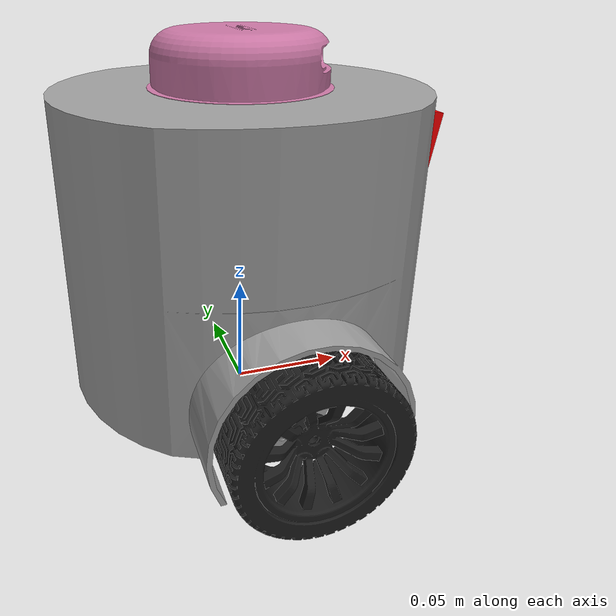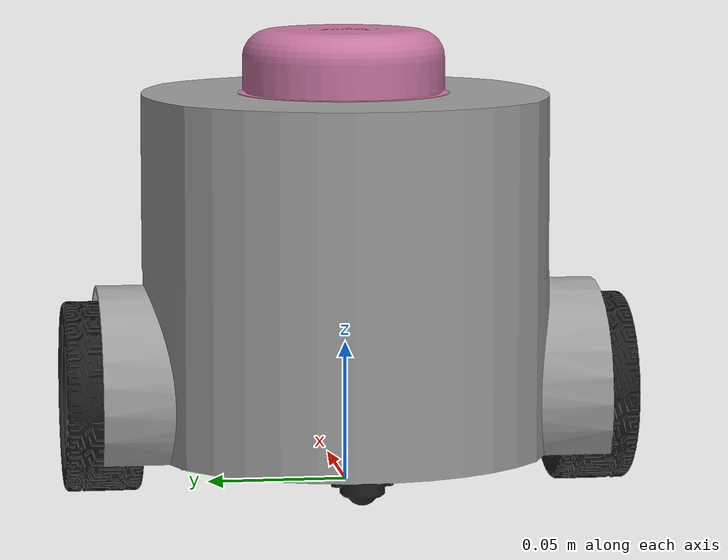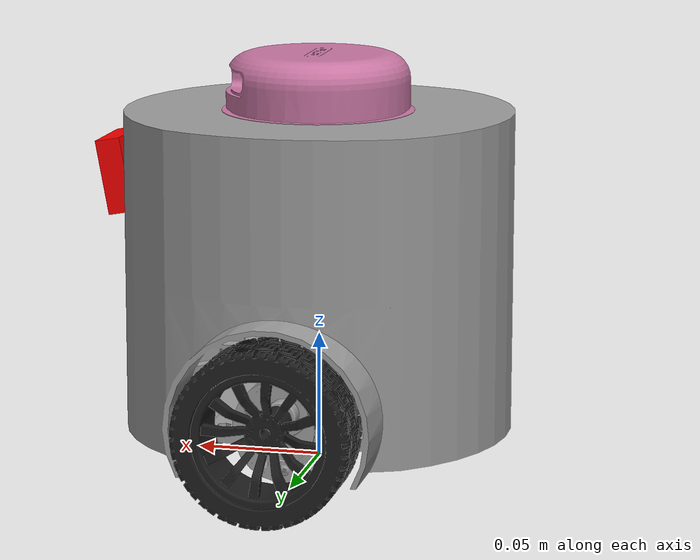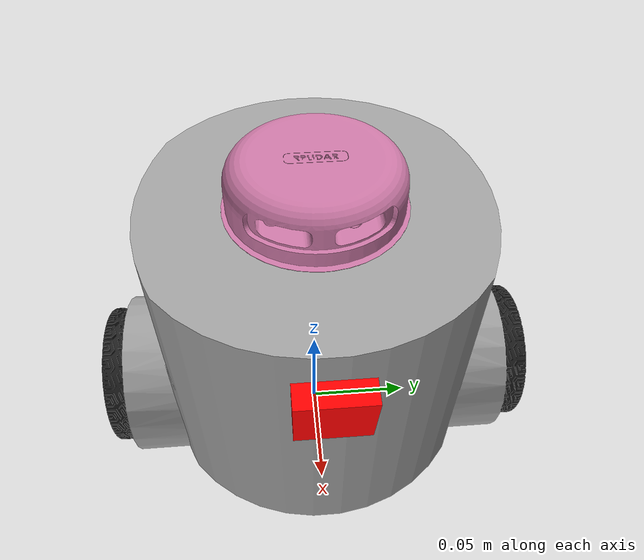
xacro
<?xml version="1.0"?>
<robot xmlns:xacro="http://www.ros.org/wiki/xacro"  name="robot">

    <xacro:arg name="use_ros2_control" default="true"/>

    <xacro:include filename="robot_core.xacro" />

    <!-- Switch between ros2_control and Gazebo integrated diff-drive control -->
    <xacro:if value="$(arg use_ros2_control)">
        <xacro:include filename="ros2_control.xacro" />
    </xacro:if>
    <xacro:unless value="$(arg use_ros2_control)">
        <xacro:include filename="gazebo_control.xacro" />
    </xacro:unless>

    <xacro:include filename="lidar.xacro" />
    <xacro:include filename="camera.xacro" />

</robot>

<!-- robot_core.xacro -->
<robot xmlns:xacro="http://www.ros.org/wiki/xacro" >

    <material name="white">
        <color rgba="1 1 1 1" />
    </material>

    <material name="orange">
        <color rgba="1 0.3 0.1 1"/>
    </material>

    <material name="blue">
        <color rgba="0.2 0.2 1 1"/>
    </material>

    <material name="black">
        <color rgba="0 0 0 1"/>
    </material>

    <material name="red">
        <color rgba="1 0 0 1"/>
    </material>

    <link name="base_footprint" />

    <joint name="base_footprint_joint" type="fixed">
        <parent link="base_footprint" />
        <child link="base_link" />
        <origin xyz="0 0 0.0325" rpy="0 0 0" />
    </joint>

    <link name="base_link">
        <inertial>
        <origin xyz="-0.0019055 0.00010735 0.052989" rpy="0 0 0" />
        <mass value="0.64078" />
        <inertia ixx="0.00089929" ixy="-1.4108e-06" ixz="4.4656e-08" iyy="0.00081185" iyz="1.034e-07" izz="0.0014661" />
        </inertial>
        <visual>
        <origin xyz="0.0 0.0 0.0" rpy="0 0 0" />
        <geometry>
            <mesh filename="package://jazzy_gz/meshes/base_link.STL" />
        </geometry>
        <material name="grey">
            <color rgba="0.62745 0.62745 0.62745 1.0" />
        </material>
        </visual>
        <collision>
        <origin xyz="0.0 0.0 0.0" rpy="0 0 0" />
        <geometry>
            <mesh filename="package://jazzy_gz/meshes/base_link.STL" />
        </geometry>
        </collision>
    </link>

    <gazebo reference="base_link">
        <material>Gazebo/Orange</material>
    </gazebo>

    <link name="left_wheel_link">
        <inertial>
        <origin xyz="-5.1909E-10 -0.0015399 7.1688E-10" rpy="0 0 0" />
        <mass value="0.035174" />
        <inertia ixx="1.5237e-05" ixy="-1.7432E-15" ixz="4.8399E-10" iyy="2.5786e-05" iyz="1.1685E-13" izz="1.5237e-05" />
        </inertial>
        <visual>
        <origin xyz="0.0 0.0 0.0" rpy="0 0 0" />
        <geometry>
            <mesh filename="package://jazzy_gz/meshes/left_wheel_link.STL" />
        </geometry>
        </visual>
        <collision>
        <origin xyz="0.0 0.0 0.0" rpy="1.5708 0 0" />
        <geometry>
            <sphere radius="0.033" />
        </geometry>
        </collision>
    </link>

    <joint name="left_wheel_link_joint" type="continuous">
        <origin xyz="0 0.09 0" rpy="0 0 0" />
        <parent link="base_link" />
        <child link="left_wheel_link" />
        <axis xyz="0 1 0" />
        <limit effort="0.05" velocity="10.0"/>
    </joint>

    <gazebo reference="left_wheel_link">
        <mu1>1.5</mu1>
        <mu2>1.5</mu2>
        <kp>1000000.0</kp>
        <kd>100.0</kd>
        <material>Gazebo/Black</material>
    </gazebo>

    <link name="right_wheel_link">
        <inertial>
        <origin xyz="8.4872E-10 0.0015399 2.5455E-10" rpy="0 0 0" />
        <mass value="0.035174" />
        <inertia ixx="1.5236e-05" ixy="-7.2194E-14" ixz="-2.0178E-11" iyy="2.5786e-05" iyz="-9.2017E-14" izz="1.5237e-05" />
        </inertial>
        <visual>
        <origin xyz="0.0 0.0 0.0" rpy="0 0 0" />
        <geometry>
            <mesh filename="package://jazzy_gz/meshes/right_wheel_link.STL" />
        </geometry>
        </visual>
        <collision>
        <origin xyz="0.0 0.0 0.0" rpy="1.5708 0 0" />
        <geometry>
            <sphere radius="0.033" />
        </geometry>
        </collision>
    </link>

    <joint name="right_wheel_link_joint" type="continuous">
        <origin xyz="0 -0.09 0" rpy="0 0 0" />
        <parent link="base_link" />
        <child link="right_wheel_link" />
        <axis xyz="0 1 0" />
        <limit effort="0.05" velocity="10.0"/>
    </joint>

    <gazebo reference="right_wheel_link">
        <mu1>1.5</mu1>
        <mu2>1.5</mu2>
        <kp>1000000.0</kp>
        <kd>100.0</kd>
        <material>Gazebo/Black</material>
    </gazebo>

    <link name="front_caster_link">
        <inertial>
        <origin xyz="-2.35686364660759E-08 -5.30640420918008E-08 0.00860269" rpy="0 0 0" />
        <mass value="0.00233535" />
        <inertia ixx="6.25775e-08" ixy="-2.67819e-11" ixz="1.62405e-13" iyy="4.56804e-08" iyz="3.62663e-13" izz="7.82059e-08" />
        </inertial>
        <visual>
        <geometry><mesh filename="package://jazzy_gz/meshes/front_caster_link.STL" /></geometry>
        </visual>
        <collision>
        <origin xyz="0 0 0.009" rpy="0 0 0" />
        <geometry><sphere radius="0.009" /></geometry>
        </collision>
    </link>

    <joint name="front_caster_link_joint" type="fixed">
        <origin xyz="0.045 0 -0.033" rpy="0 0 0" />
        <parent link="base_link" />
        <child link="front_caster_link" />
    </joint>

    <gazebo reference="front_caster_link">
        <material>Gazebo/Black</material>
        <mu1 value="0.0"/>
        <mu2 value="0.0"/>
    </gazebo>

    <link name="back_caster_link">
        <inertial>
        <origin xyz="-2.3569E-08 -5.3064E-08 0.0086027" rpy="0 0 0" />
        <mass value="0.0023354" />
        <inertia ixx="6.2578e-08" ixy="-2.6782e-11" ixz="1.624e-13" iyy="4.568e-08" iyz="3.6266e-13" izz="7.8206e-08" />
        </inertial>
        <visual>
        <geometry><mesh filename="package://jazzy_gz/meshes/back_caster_link.STL" /></geometry>
        </visual>
        <collision>
        <origin xyz="0 0 0.009" rpy="0 0 0" />
        <geometry><sphere radius="0.009" /></geometry>
        </collision>
    </link>

    <joint name="back_caster_link_joint" type="fixed">
        <origin xyz="-0.045 0 -0.033" rpy="0 0 0" />
        <parent link="base_link" />
        <child link="back_caster_link" />
    </joint>

    <gazebo reference="back_caster_link">
        <material>Gazebo/Black</material>
        <mu1 value="0.0"/>
        <mu2 value="0.0"/>
    </gazebo>

</robot>

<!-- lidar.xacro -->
<robot xmlns:xacro="http://www.ros.org/wiki/xacro" >

    <link name="lidar_link">
        <visual>
            <geometry><mesh filename="package://jazzy_gz/meshes/lidar_link.STL" /></geometry>
        </visual>
        <material name="red"/>
        <inertial>
            <origin xyz="0 0 0" rpy="0 0 0"/>
            <mass value="0.1"/>
            <inertia ixx="1e-4" ixy="0" ixz="0" iyy="1e-4" iyz="0" izz="1e-4"/>
        </inertial>
        <collision>
            <origin xyz="0 0 0" rpy="0 0 0"/>
            <geometry><cylinder radius="0.04" length="0.04"/></geometry>
        </collision>
    </link>

    <joint name="lidar_link_joint" type="fixed">
        <origin xyz="0.00032 0.00056 0.1206" rpy="0 0 0" />
        <parent link="base_link" />
        <child link="lidar_link" />
    </joint>

    <!-- Single gazebo block for the sensor -->
    <gazebo reference="lidar_link">
        <sensor name="laser" type="gpu_lidar">
            <pose> 0 0 0 0 0 0 </pose>
            <visualize>false</visualize>
            <update_rate>10</update_rate>
            <lidar>
                <scan>
                    <horizontal>
                        <samples>360</samples>
                        <min_angle>-3.14</min_angle>
                        <max_angle>3.14</max_angle>
                    </horizontal>
                </scan>
                <range>
                    <min>0.3</min>
                    <max>12</max>
                </range>
            </lidar>
            <topic>scan</topic>
            <gz_frame_id>lidar_link</gz_frame_id>
        </sensor>
    </gazebo>

</robot>

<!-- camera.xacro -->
<robot xmlns:xacro="http://www.ros.org/wiki/xacro">

    <joint name="camera_joint" type="fixed">
        <parent link="base_link"/>
        <child link="camera_link"/>
        <origin xyz="0.08 0.00056 0.0806" rpy="0 0.18 0"/>
    </joint>

    <link name="camera_link">
        <visual>
            <geometry>
                <box size="0.010 0.03 0.03"/>
            </geometry>
            <material name="red"/>
        </visual>
    </link>

    <joint name="camera_optical_joint" type="fixed">
        <origin xyz="0 0 0" rpy="${-pi/2} 0 ${-pi/2}" />
        <parent link="camera_link" />
        <child link="camera_link_optical" />
    </joint>

    <link name="camera_link_optical"></link>

    <gazebo reference="camera_link">
        <sensor name="camera" type="camera">
            <pose> 0 0 0 0 0 0 </pose>
            <visualize>true</visualize>
            <update_rate>10</update_rate>
            <camera>
                <camera_info_topic>camera/camera_info</camera_info_topic>
                <horizontal_fov>1.089</horizontal_fov>
                <image>
                    <format>R8G8B8</format>
                    <width>640</width>
                    <height>480</height>
                </image>
                <clip>
                    <near>0.05</near>
                    <far>8.0</far>
                </clip>
            </camera>
            <topic>camera/image_raw</topic>
            <gz_frame_id>camera_link_optical</gz_frame_id>
        </sensor>
    </gazebo>

</robot>
